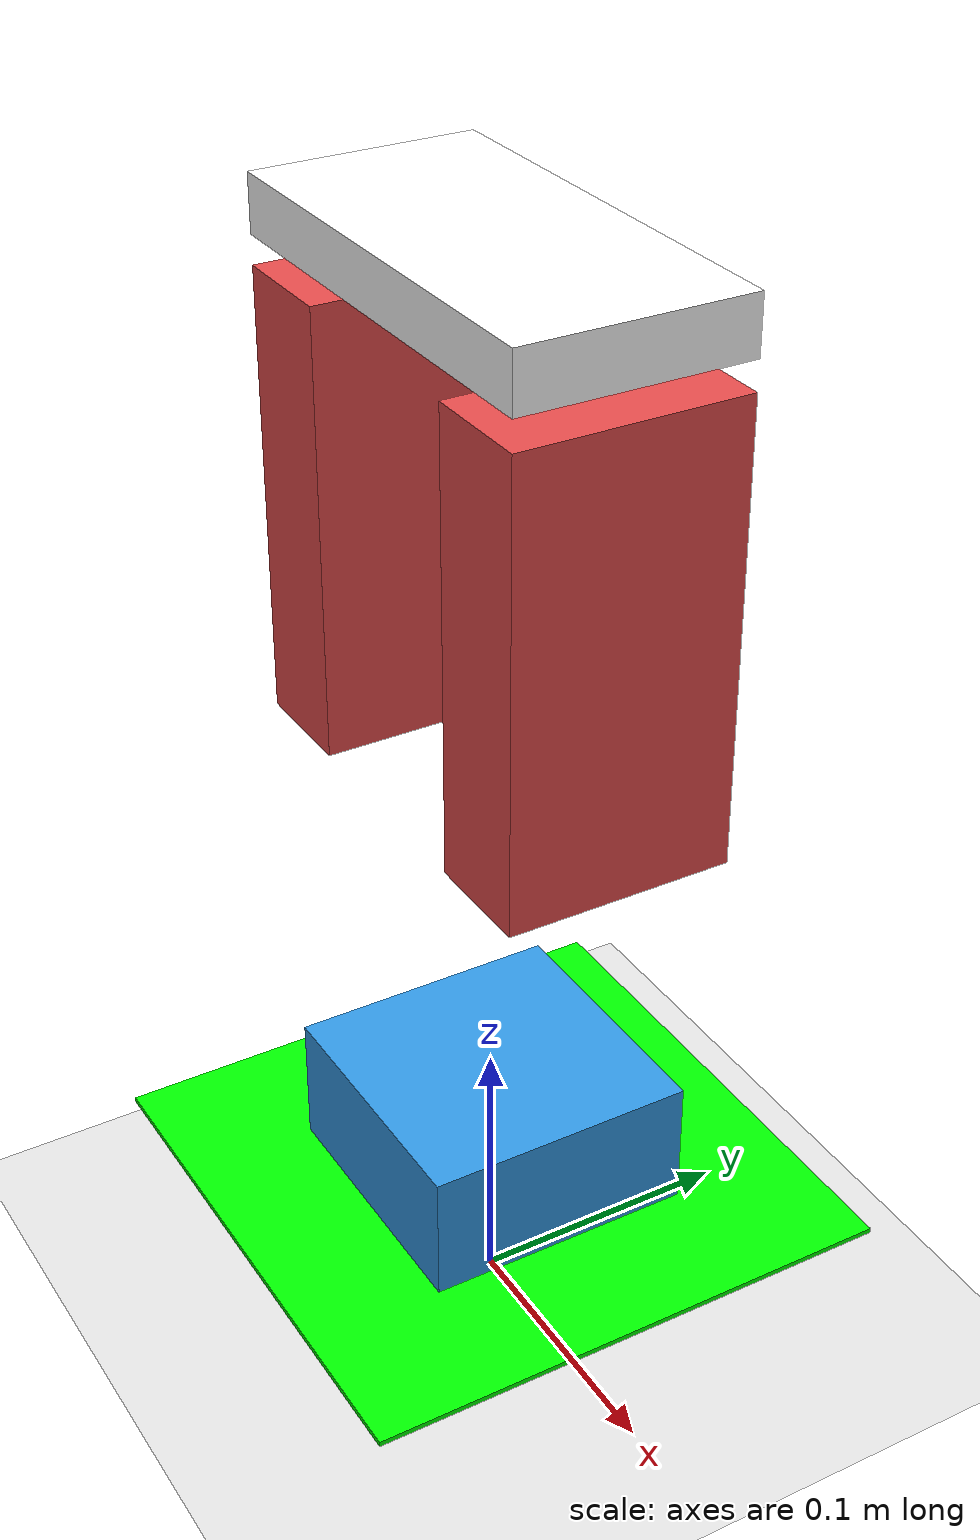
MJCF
<mujoco model="simple_gripper_scene">
    <compiler angle="degree" coordinate="local"/>
    <option gravity="0 0 -9.81" integrator="RK4"/>

    <worldbody>
        <!-- Ground -->
        <geom name="floor" type="plane" pos="0 0 0" size="5 5 0.1" rgba="0.9 0.9 0.9 1"/>

        <!-- Block -->
        <body name="block" pos="0 0 0.05">
            <joint type="free" name="block_free"/>
            <geom type="box" size="0.05 0.05 0.05" rgba="0.2 0.6 0.9 1" mass="0.1" friction = "2.0"/>
        </body>

        <!-- Target -->
        <body name="target" pos="0 0 0.05">
            <joint type="free" name="target_free"/>
            <geom type="box" size="0.1 0.1 0.001" rgba="0 1 0 1" mass="0.1" friction = "2.0"/>
        </body>

        <!-- Gripper -->
        <body name="gripper" pos="0 0 0.3">
            <!-- sideways motion -->
            <joint name="gripper_leftright" type="slide" axis="1 0 0" range="-6 6" stiffness="20" damping="5"/>
            <joint name="gripper_forwardbackward" type="slide" axis="0 1 0" range="-6 6" stiffness="20" damping="5"/>
            <!-- vertical motion -->
            <joint name="gripper_updown" type="slide" axis="0 0 1" range="-1.0 0.0" stiffness="20" damping="5"/>

            <geom type="box" size="0.08 0.04 0.01" pos="0 0 0.1" mass="0.1" rgba="1 1 1 1"/>

            <!-- Left finger -->
            <body name="left_finger" pos="-0.06 0 0">
                <joint name="left_slide" type="slide" axis="1 0 0" limited="true" range="-0.05 0.1" stiffness="10" damping="5"/>
                <geom type="box" size="0.02 0.04 0.08" rgba="0.9 0.3 0.3 1" mass="0.1" friction = "1.0"/>
            </body>

            <!-- Right finger -->
            <body name="right_finger" pos="0.06 0 0">
                <joint name="right_slide" type="slide" axis="-1 0 0" limited="true" range="-0.05 0.1" stiffness="10" damping="5"/>
                <geom type="box" size="0.02 0.04 0.08" rgba="0.9 0.3 0.3 1" mass="0.1" friction = "1.0"/>
            </body>
        </body>

        <!-- Camera for rendering -->
        <camera name="main_camera" pos="1.5 1.5 1.0" xyaxes="0.7 -0.7 0 0.4 0.4 0.8"/>
    </worldbody>

    <equality>
        <joint joint1="left_slide" joint2="right_slide"/>
    </equality>

    <actuator>
        <motor name = "up/down" joint="gripper_updown" ctrlrange="-15 15" ctrllimited="true"/>
        <motor name = "left/right" joint="gripper_leftright" ctrlrange="-10 10" ctrllimited="true"/>
        <motor name = "forward/backward" joint="gripper_forwardbackward" ctrlrange="-10 10" ctrllimited="true"/>

        <motor name = "finger" joint="left_slide" ctrlrange="-2 5" ctrllimited="true"/>
    </actuator>
</mujoco>
